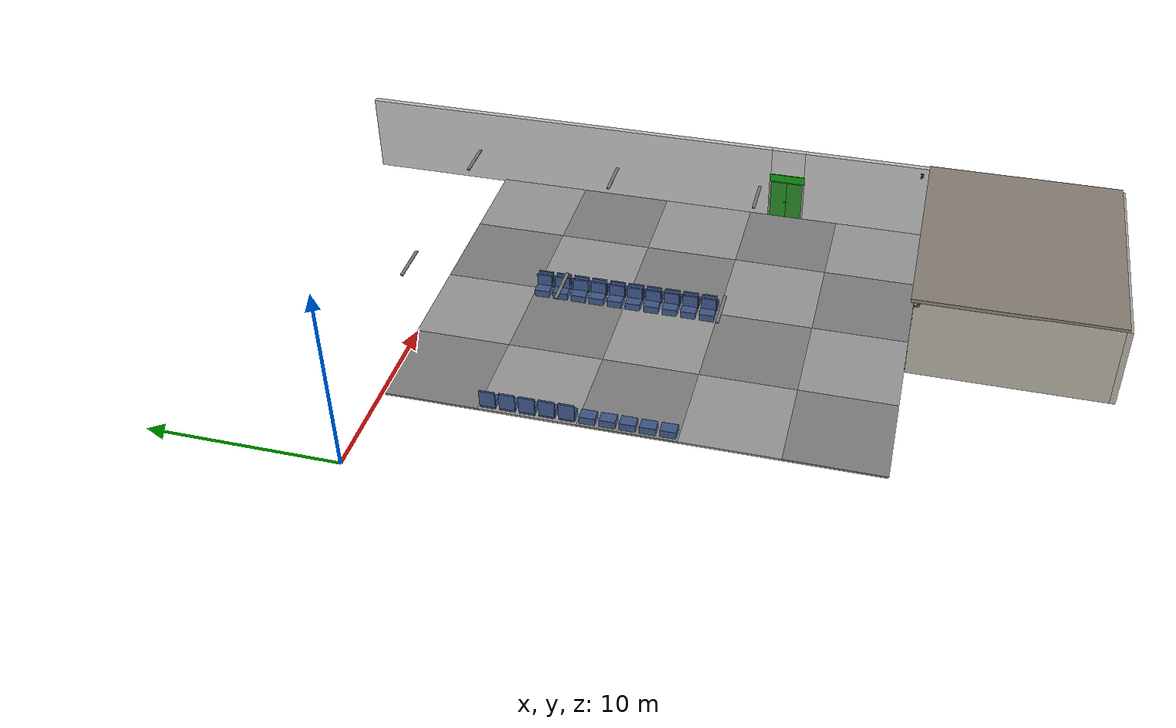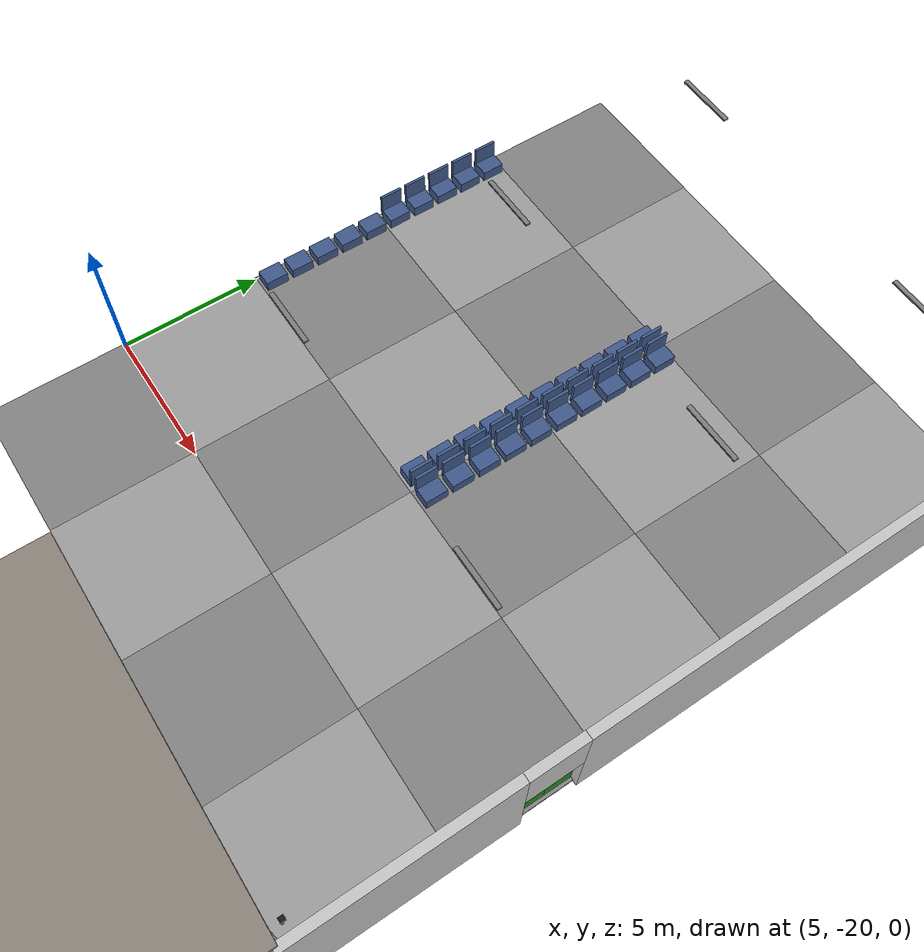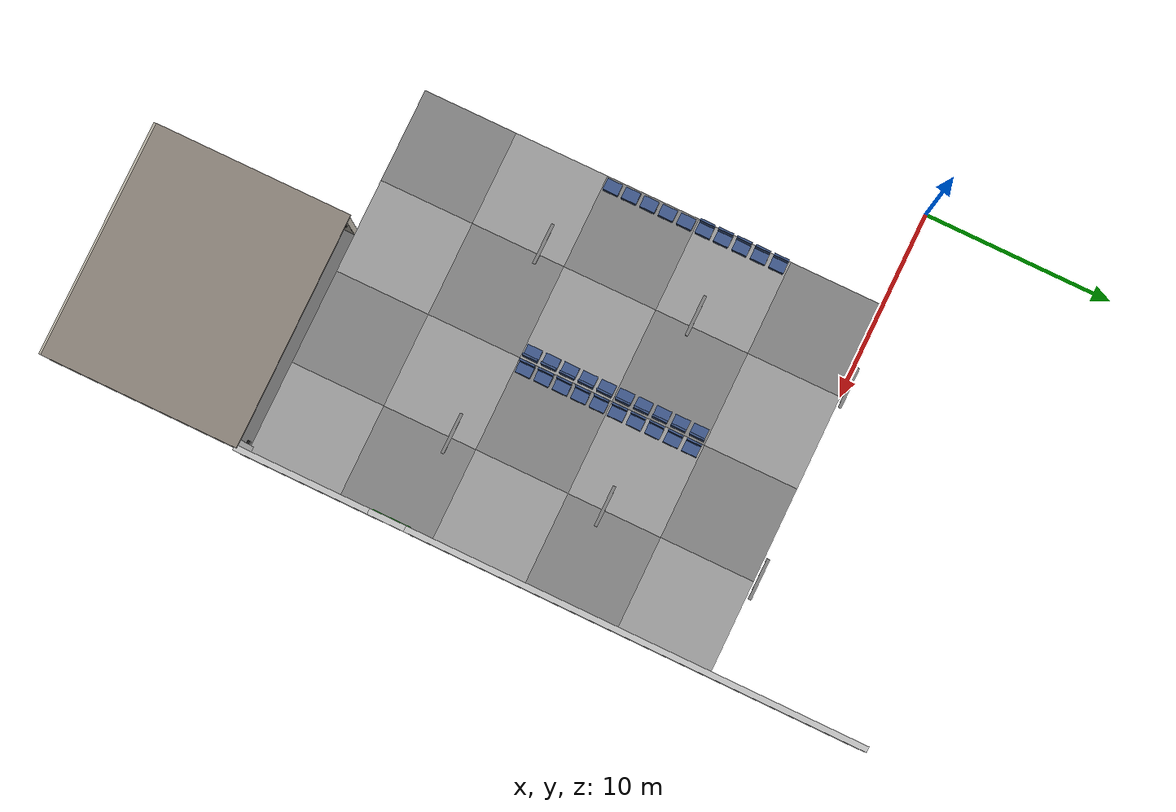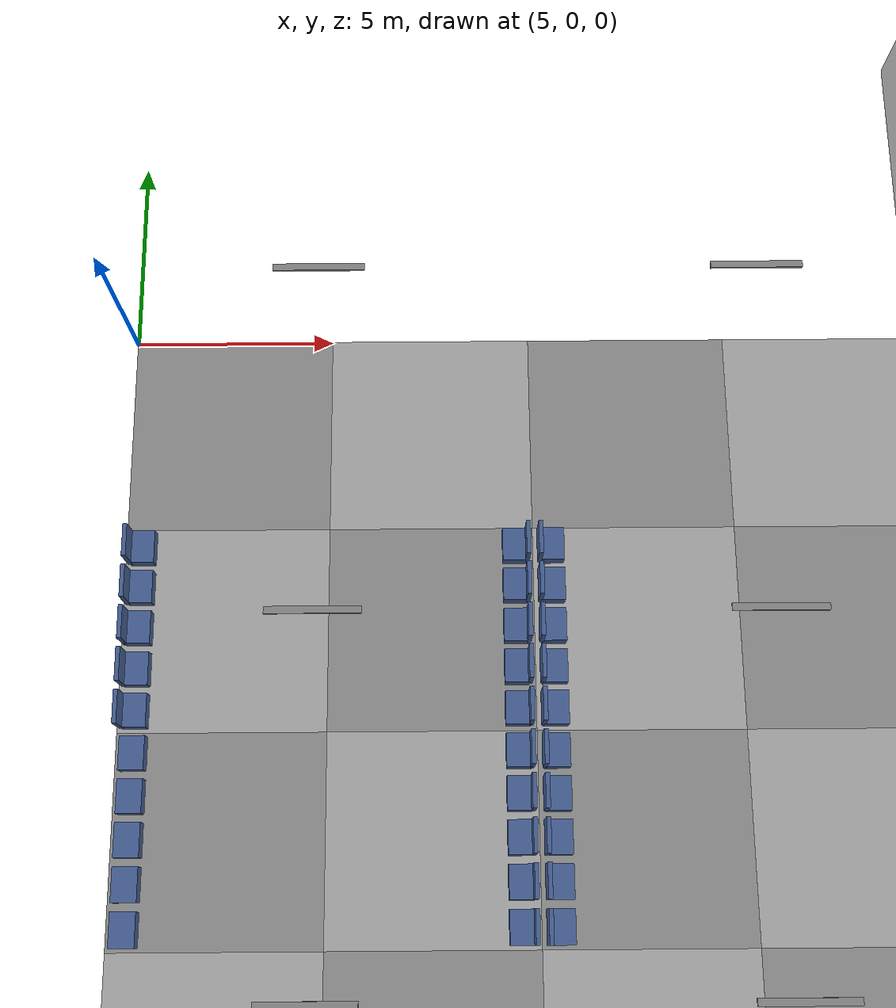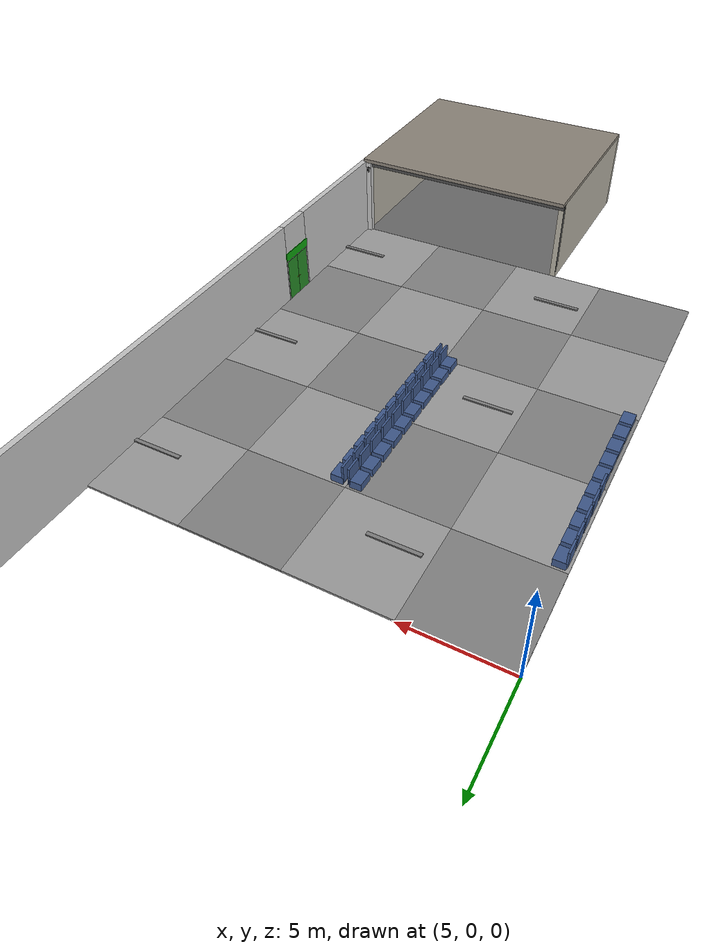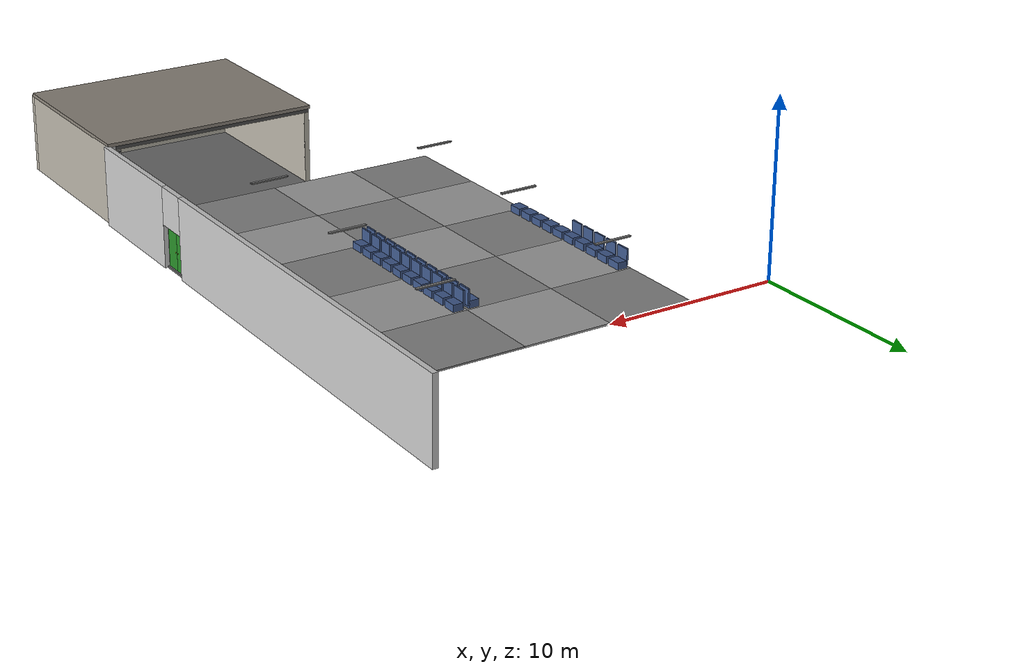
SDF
<sdf version="1.10">
 <world name="my_world">
  <model name="vtile_6_0">
   <static>true</static>
   <pose>7.5 -22.5 0.05 0 0 0</pose>
   <link name="link">
    <visual name="vis">
     <geometry><box><size>5 5 0.1</size></box></geometry>
     <material><ambient>0.52 0.52 0.52 1</ambient><diffuse>0.52 0.52 0.52 1</diffuse></material>
    </visual>
   </link>
  </model>
  <model name="vtile_6_1">
   <static>true</static>
   <pose>7.5 -17.5 0.05 0 0 0</pose>
   <link name="link">
    <visual name="vis">
     <geometry><box><size>5 5 0.1</size></box></geometry>
     <material><ambient>0.62 0.62 0.62 1</ambient><diffuse>0.62 0.62 0.62 1</diffuse></material>
    </visual>
   </link>
  </model>
  <model name="vtile_6_2">
   <static>true</static>
   <pose>7.5 -12.5 0.05 0 0 0</pose>
   <link name="link">
    <visual name="vis">
     <geometry><box><size>5 5 0.1</size></box></geometry>
     <material><ambient>0.52 0.52 0.52 1</ambient><diffuse>0.52 0.52 0.52 1</diffuse></material>
    </visual>
   </link>
  </model>
  <model name="vtile_6_3">
   <static>true</static>
   <pose>7.5 -7.5 0.05 0 0 0</pose>
   <link name="link">
    <visual name="vis">
     <geometry><box><size>5 5 0.1</size></box></geometry>
     <material><ambient>0.62 0.62 0.62 1</ambient><diffuse>0.62 0.62 0.62 1</diffuse></material>
    </visual>
   </link>
  </model>
  <model name="vtile_6_4">
   <static>true</static>
   <pose>7.5 -2.5 0.05 0 0 0</pose>
   <link name="link">
    <visual name="vis">
     <geometry><box><size>5 5 0.1</size></box></geometry>
     <material><ambient>0.52 0.52 0.52 1</ambient><diffuse>0.52 0.52 0.52 1</diffuse></material>
    </visual>
   </link>
  </model>
  <model name="vtile_7_0">
   <static>true</static>
   <pose>12.5 -22.5 0.05 0 0 0</pose>
   <link name="link">
    <visual name="vis">
     <geometry><box><size>5 5 0.1</size></box></geometry>
     <material><ambient>0.62 0.62 0.62 1</ambient><diffuse>0.62 0.62 0.62 1</diffuse></material>
    </visual>
   </link>
  </model>
  <model name="vtile_7_1">
   <static>true</static>
   <pose>12.5 -17.5 0.05 0 0 0</pose>
   <link name="link">
    <visual name="vis">
     <geometry><box><size>5 5 0.1</size></box></geometry>
     <material><ambient>0.52 0.52 0.52 1</ambient><diffuse>0.52 0.52 0.52 1</diffuse></material>
    </visual>
   </link>
  </model>
  <model name="vtile_7_2">
   <static>true</static>
   <pose>12.5 -12.5 0.05 0 0 0</pose>
   <link name="link">
    <visual name="vis">
     <geometry><box><size>5 5 0.1</size></box></geometry>
     <material><ambient>0.62 0.62 0.62 1</ambient><diffuse>0.62 0.62 0.62 1</diffuse></material>
    </visual>
   </link>
  </model>
  <model name="vtile_7_3">
   <static>true</static>
   <pose>12.5 -7.5 0.05 0 0 0</pose>
   <link name="link">
    <visual name="vis">
     <geometry><box><size>5 5 0.1</size></box></geometry>
     <material><ambient>0.52 0.52 0.52 1</ambient><diffuse>0.52 0.52 0.52 1</diffuse></material>
    </visual>
   </link>
  </model>
  <model name="vtile_7_4">
   <static>true</static>
   <pose>12.5 -2.5 0.05 0 0 0</pose>
   <link name="link">
    <visual name="vis">
     <geometry><box><size>5 5 0.1</size></box></geometry>
     <material><ambient>0.62 0.62 0.62 1</ambient><diffuse>0.62 0.62 0.62 1</diffuse></material>
    </visual>
   </link>
  </model>
  <model name="vtile_8_0">
   <static>true</static>
   <pose>17.5 -22.5 0.05 0 0 0</pose>
   <link name="link">
    <visual name="vis">
     <geometry><box><size>5 5 0.1</size></box></geometry>
     <material><ambient>0.52 0.52 0.52 1</ambient><diffuse>0.52 0.52 0.52 1</diffuse></material>
    </visual>
   </link>
  </model>
  <model name="vtile_8_1">
   <static>true</static>
   <pose>17.5 -17.5 0.05 0 0 0</pose>
   <link name="link">
    <visual name="vis">
     <geometry><box><size>5 5 0.1</size></box></geometry>
     <material><ambient>0.62 0.62 0.62 1</ambient><diffuse>0.62 0.62 0.62 1</diffuse></material>
    </visual>
   </link>
  </model>
  <model name="vtile_8_2">
   <static>true</static>
   <pose>17.5 -12.5 0.05 0 0 0</pose>
   <link name="link">
    <visual name="vis">
     <geometry><box><size>5 5 0.1</size></box></geometry>
     <material><ambient>0.52 0.52 0.52 1</ambient><diffuse>0.52 0.52 0.52 1</diffuse></material>
    </visual>
   </link>
  </model>
  <model name="vtile_8_3">
   <static>true</static>
   <pose>17.5 -7.5 0.05 0 0 0</pose>
   <link name="link">
    <visual name="vis">
     <geometry><box><size>5 5 0.1</size></box></geometry>
     <material><ambient>0.62 0.62 0.62 1</ambient><diffuse>0.62 0.62 0.62 1</diffuse></material>
    </visual>
   </link>
  </model>
  <model name="vtile_8_4">
   <static>true</static>
   <pose>17.5 -2.5 0.05 0 0 0</pose>
   <link name="link">
    <visual name="vis">
     <geometry><box><size>5 5 0.1</size></box></geometry>
     <material><ambient>0.52 0.52 0.52 1</ambient><diffuse>0.52 0.52 0.52 1</diffuse></material>
    </visual>
   </link>
  </model>
  <model name="vtile_9_0">
   <static>true</static>
   <pose>22.5 -22.5 0.05 0 0 0</pose>
   <link name="link">
    <visual name="vis">
     <geometry><box><size>5 5 0.1</size></box></geometry>
     <material><ambient>0.62 0.62 0.62 1</ambient><diffuse>0.62 0.62 0.62 1</diffuse></material>
    </visual>
   </link>
  </model>
  <model name="vtile_9_1">
   <static>true</static>
   <pose>22.5 -17.5 0.05 0 0 0</pose>
   <link name="link">
    <visual name="vis">
     <geometry><box><size>5 5 0.1</size></box></geometry>
     <material><ambient>0.52 0.52 0.52 1</ambient><diffuse>0.52 0.52 0.52 1</diffuse></material>
    </visual>
   </link>
  </model>
  <model name="vtile_9_2">
   <static>true</static>
   <pose>22.5 -12.5 0.05 0 0 0</pose>
   <link name="link">
    <visual name="vis">
     <geometry><box><size>5 5 0.1</size></box></geometry>
     <material><ambient>0.62 0.62 0.62 1</ambient><diffuse>0.62 0.62 0.62 1</diffuse></material>
    </visual>
   </link>
  </model>
  <model name="vtile_9_3">
   <static>true</static>
   <pose>22.5 -7.5 0.05 0 0 0</pose>
   <link name="link">
    <visual name="vis">
     <geometry><box><size>5 5 0.1</size></box></geometry>
     <material><ambient>0.52 0.52 0.52 1</ambient><diffuse>0.52 0.52 0.52 1</diffuse></material>
    </visual>
   </link>
  </model>
  <model name="vtile_9_4">
   <static>true</static>
   <pose>22.5 -2.5 0.05 0 0 0</pose>
   <link name="link">
    <visual name="vis">
     <geometry><box><size>5 5 0.1</size></box></geometry>
     <material><ambient>0.62 0.62 0.62 1</ambient><diffuse>0.62 0.62 0.62 1</diffuse></material>
    </visual>
   </link>
  </model>
  <model name="wall_south_e">
   <static>true</static>
   <pose>24.775 -25 2.25 0 0 0</pose>
   <link name="link">
    <collision name="col"><geometry><box><size>0.45 0.3 4.5</size></box></geometry></collision>
    <visual name="vis">
     <geometry><box><size>0.45 0.3 4.5</size></box></geometry>
     <material><ambient>0.78 0.78 0.78 1</ambient><diffuse>0.78 0.78 0.78 1</diffuse></material>
    </visual>
   </link>
  </model>
  <model name="wall_east_s">
   <static>true</static>
   <pose>25 -21.475 2.25 0 0 0</pose>
   <link name="link">
    <collision name="col"><geometry><box><size>0.3 7.05 4.5</size></box></geometry></collision>
    <visual name="vis">
     <geometry><box><size>0.3 7.05 4.5</size></box></geometry>
     <material><ambient>0.78 0.78 0.78 1</ambient><diffuse>0.78 0.78 0.78 1</diffuse></material>
    </visual>
   </link>
  </model>
  <model name="wall_east_s2">
   <static>true</static>
   <pose>25 -4.05 2.25 0 0 0</pose>
   <link name="link">
    <collision name="col"><geometry><box><size>0.3 24.0 4.5</size></box></geometry></collision>
    <visual name="vis">
     <geometry><box><size>0.3 24.0 4.5</size></box></geometry>
     <material><ambient>0.78 0.78 0.78 1</ambient><diffuse>0.78 0.78 0.78 1</diffuse></material>
    </visual>
   </link>
  </model>
  <model name="wall_east_exit_top">
   <static>true</static>
   <pose>25 -17 3.45 0 0 0</pose>
   <link name="link">
    <collision name="col"><geometry><box><size>0.3 1.9 2.1</size></box></geometry></collision>
    <visual name="vis">
     <geometry><box><size>0.3 1.9 2.1</size></box></geometry>
     <material><ambient>0.78 0.78 0.78 1</ambient><diffuse>0.78 0.78 0.78 1</diffuse></material>
    </visual>
   </link>
  </model>
  <model name="exit_east_door_l">
   <static>true</static>
   <pose>24.87 -17.45 1.2 0 0 0</pose>
   <link name="link">
    <collision name="col"><geometry><box><size>0.06 0.9 2.4</size></box></geometry></collision>
    <visual name="vis">
     <geometry><box><size>0.06 0.9 2.4</size></box></geometry>
     <material><ambient>0.15 0.55 0.15 1</ambient><diffuse>0.15 0.55 0.15 1</diffuse></material>
    </visual>
   </link>
  </model>
  <model name="exit_east_door_r">
   <static>true</static>
   <pose>24.87 -16.55 1.2 0 0 0</pose>
   <link name="link">
    <collision name="col"><geometry><box><size>0.06 0.9 2.4</size></box></geometry></collision>
    <visual name="vis">
     <geometry><box><size>0.06 0.9 2.4</size></box></geometry>
     <material><ambient>0.15 0.55 0.15 1</ambient><diffuse>0.15 0.55 0.15 1</diffuse></material>
    </visual>
   </link>
  </model>
  <model name="exit_east_handle_l">
   <static>true</static>
   <pose>24.87 -17.1 1.1 0 0 0</pose>
   <link name="link">
    <visual name="vis">
     <geometry><box><size>0.08 0.06 0.06</size></box></geometry>
     <material><ambient>0.7 0.6 0.1 1</ambient><diffuse>0.7 0.6 0.1 1</diffuse></material>
    </visual>
   </link>
  </model>
  <model name="exit_east_handle_r">
   <static>true</static>
   <pose>24.87 -16.9 1.1 0 0 0</pose>
   <link name="link">
    <visual name="vis">
     <geometry><box><size>0.08 0.06 0.06</size></box></geometry>
     <material><ambient>0.7 0.6 0.1 1</ambient><diffuse>0.7 0.6 0.1 1</diffuse></material>
    </visual>
   </link>
  </model>
  <model name="exit_east_sign">
   <static>true</static>
   <pose>24.87 -17 2.7 0 0 0</pose>
   <link name="link">
    <visual name="vis">
     <geometry><box><size>0.12 2.0 0.45</size></box></geometry>
     <material><ambient>0.05 0.65 0.05 1</ambient><diffuse>0.05 0.65 0.05 1</diffuse></material>
    </visual>
   </link>
  </model>
  <model name="exit_east_sign_txt">
   <static>true</static>
   <pose>24.87 -17 2.7 0 0 0</pose>
   <link name="link">
    <visual name="vis">
     <geometry><box><size>0.05 1.8 0.28</size></box></geometry>
     <material><ambient>0.92 0.92 0.92 1</ambient><diffuse>0.92 0.92 0.92 1</diffuse></material>
    </visual>
   </link>
  </model>
  <model name="exit_east_frame_l">
   <static>true</static>
   <pose>24.87 -17.95 1.2 0 0 0</pose>
   <link name="link">
    <collision name="col"><geometry><box><size>0.06 0.1 2.4</size></box></geometry></collision>
    <visual name="vis">
     <geometry><box><size>0.06 0.1 2.4</size></box></geometry>
     <material><ambient>0.6 0.6 0.6 1</ambient><diffuse>0.6 0.6 0.6 1</diffuse></material>
    </visual>
   </link>
  </model>
  <model name="exit_east_frame_r">
   <static>true</static>
   <pose>24.87 -16.05 1.2 0 0 0</pose>
   <link name="link">
    <collision name="col"><geometry><box><size>0.06 0.1 2.4</size></box></geometry></collision>
    <visual name="vis">
     <geometry><box><size>0.06 0.1 2.4</size></box></geometry>
     <material><ambient>0.6 0.6 0.6 1</ambient><diffuse>0.6 0.6 0.6 1</diffuse></material>
    </visual>
   </link>
  </model>
  <model name="exit_east_frame_t">
   <static>true</static>
   <pose>24.87 -17 2.45 0 0 0</pose>
   <link name="link">
    <visual name="vis">
     <geometry><box><size>0.06 2.0 0.1</size></box></geometry>
     <material><ambient>0.6 0.6 0.6 1</ambient><diffuse>0.6 0.6 0.6 1</diffuse></material>
    </visual>
   </link>
  </model>
  <model name="lamp_a_10_strip">
   <static>true</static>
   <pose>10 -8 4.42 0 0 0</pose>
   <link name="link">
    <visual name="strip">
     <geometry><box><size>2.0 0.12 0.04</size></box></geometry>
     <material>
      <ambient>0.95 0.95 0.88 1</ambient>
      <diffuse>0.95 0.95 0.88 1</diffuse>
      <emissive>0.35 0.35 0.30 1</emissive>
     </material>
    </visual>
    <visual name="housing">
     <pose>0 0 0.03 0 0 0</pose>
     <geometry><box><size>2.1 0.16 0.06</size></box></geometry>
     <material><ambient>0.5 0.5 0.5 1</ambient><diffuse>0.5 0.5 0.5 1</diffuse></material>
    </visual>
   </link>
  </model>
  <model name="lamp_a_20_strip">
   <static>true</static>
   <pose>20 -8 4.42 0 0 0</pose>
   <link name="link">
    <visual name="strip">
     <geometry><box><size>2.0 0.12 0.04</size></box></geometry>
     <material>
      <ambient>0.95 0.95 0.88 1</ambient>
      <diffuse>0.95 0.95 0.88 1</diffuse>
      <emissive>0.35 0.35 0.30 1</emissive>
     </material>
    </visual>
    <visual name="housing">
     <pose>0 0 0.03 0 0 0</pose>
     <geometry><box><size>2.1 0.16 0.06</size></box></geometry>
     <material><ambient>0.5 0.5 0.5 1</ambient><diffuse>0.5 0.5 0.5 1</diffuse></material>
    </visual>
   </link>
  </model>
  <model name="lamp_b_10_strip">
   <static>true</static>
   <pose>10 0 4.42 0 0 0</pose>
   <link name="link">
    <visual name="strip">
     <geometry><box><size>2.0 0.12 0.04</size></box></geometry>
     <material>
      <ambient>0.95 0.95 0.88 1</ambient>
      <diffuse>0.95 0.95 0.88 1</diffuse>
      <emissive>0.35 0.35 0.30 1</emissive>
     </material>
    </visual>
    <visual name="housing">
     <pose>0 0 0.03 0 0 0</pose>
     <geometry><box><size>2.1 0.16 0.06</size></box></geometry>
     <material><ambient>0.5 0.5 0.5 1</ambient><diffuse>0.5 0.5 0.5 1</diffuse></material>
    </visual>
   </link>
  </model>
  <model name="lamp_b_20_strip">
   <static>true</static>
   <pose>20 0 4.42 0 0 0</pose>
   <link name="link">
    <visual name="strip">
     <geometry><box><size>2.0 0.12 0.04</size></box></geometry>
     <material>
      <ambient>0.95 0.95 0.88 1</ambient>
      <diffuse>0.95 0.95 0.88 1</diffuse>
      <emissive>0.35 0.35 0.30 1</emissive>
     </material>
    </visual>
    <visual name="housing">
     <pose>0 0 0.03 0 0 0</pose>
     <geometry><box><size>2.1 0.16 0.06</size></box></geometry>
     <material><ambient>0.5 0.5 0.5 1</ambient><diffuse>0.5 0.5 0.5 1</diffuse></material>
    </visual>
   </link>
  </model>
  <model name="lamp_d_10_strip">
   <static>true</static>
   <pose>10 -16 4.42 0 0 0</pose>
   <link name="link">
    <visual name="strip">
     <geometry><box><size>2.0 0.12 0.04</size></box></geometry>
     <material>
      <ambient>0.95 0.95 0.88 1</ambient>
      <diffuse>0.95 0.95 0.88 1</diffuse>
      <emissive>0.35 0.35 0.30 1</emissive>
     </material>
    </visual>
    <visual name="housing">
     <pose>0 0 0.03 0 0 0</pose>
     <geometry><box><size>2.1 0.16 0.06</size></box></geometry>
     <material><ambient>0.5 0.5 0.5 1</ambient><diffuse>0.5 0.5 0.5 1</diffuse></material>
    </visual>
   </link>
  </model>
  <model name="lamp_d_20_strip">
   <static>true</static>
   <pose>20 -16 4.42 0 0 0</pose>
   <link name="link">
    <visual name="strip">
     <geometry><box><size>2.0 0.12 0.04</size></box></geometry>
     <material>
      <ambient>0.95 0.95 0.88 1</ambient>
      <diffuse>0.95 0.95 0.88 1</diffuse>
      <emissive>0.35 0.35 0.30 1</emissive>
     </material>
    </visual>
    <visual name="housing">
     <pose>0 0 0.03 0 0 0</pose>
     <geometry><box><size>2.1 0.16 0.06</size></box></geometry>
     <material><ambient>0.5 0.5 0.5 1</ambient><diffuse>0.5 0.5 0.5 1</diffuse></material>
    </visual>
   </link>
  </model>
  <model name="garage_wall_east">
   <static>true</static>
   <pose>24.85 -30.0 2.25 0 0 0</pose>
   <link name="link">
    <collision name="col"><geometry><box><size>0.3 10 4.5</size></box></geometry></collision>
    <visual name="vis">
     <geometry><box><size>0.3 10 4.5</size></box></geometry>
     <material><ambient>0.72 0.70 0.65 1</ambient><diffuse>0.72 0.70 0.65 1</diffuse></material>
    </visual>
   </link>
  </model>
  <model name="garage_wall_west">
   <static>true</static>
   <pose>12.85 -30.0 2.25 0 0 0</pose>
   <link name="link">
    <collision name="col"><geometry><box><size>0.3 10 4.5</size></box></geometry></collision>
    <visual name="vis">
     <geometry><box><size>0.3 10 4.5</size></box></geometry>
     <material><ambient>0.72 0.70 0.65 1</ambient><diffuse>0.72 0.70 0.65 1</diffuse></material>
    </visual>
   </link>
  </model>
  <model name="garage_wall_south">
   <static>true</static>
   <pose>18.85 -35.15 2.25 0 0 0</pose>
   <link name="link">
    <collision name="col"><geometry><box><size>12.3 0.3 4.5</size></box></geometry></collision>
    <visual name="vis">
     <geometry><box><size>12.3 0.3 4.5</size></box></geometry>
     <material><ambient>0.72 0.70 0.65 1</ambient><diffuse>0.72 0.70 0.65 1</diffuse></material>
    </visual>
   </link>
  </model>
  <model name="garage_roof">
   <static>true</static>
   <pose>18.85 -30.0 4.55 0 0 0</pose>
   <link name="link">
    <collision name="col"><geometry><box><size>12.3 10.3 0.2</size></box></geometry></collision>
    <visual name="vis">
     <geometry><box><size>12.3 10.3 0.2</size></box></geometry>
     <material><ambient>0.55 0.52 0.48 1</ambient><diffuse>0.55 0.52 0.48 1</diffuse></material>
    </visual>
   </link>
  </model>
  <model name="garage_floor">
   <static>true</static>
   <pose>18.85 -30.0 0.05 0 0 0</pose>
   <link name="link">
    <collision name="col"><geometry><box><size>11.8 10 0.1</size></box></geometry></collision>
    <visual name="vis">
     <geometry><box><size>11.8 10 0.1</size></box></geometry>
     <material><ambient>0.42 0.42 0.42 1</ambient><diffuse>0.42 0.42 0.42 1</diffuse></material>
    </visual>
   </link>
  </model>
  <model name="garage_door_frame_l">
   <static>true</static>
   <pose>12.85 -25.15 2.25 0 0 0</pose>
   <link name="link">
    <collision name="col"><geometry><box><size>0.3 0.3 4.5</size></box></geometry></collision>
    <visual name="vis">
     <geometry><box><size>0.3 0.3 4.5</size></box></geometry>
     <material><ambient>0.3 0.3 0.3 1</ambient><diffuse>0.3 0.3 0.3 1</diffuse></material>
    </visual>
   </link>
  </model>
  <model name="garage_door_frame_r">
   <static>true</static>
   <pose>24.8 -25.15 2.25 0 0 0</pose>
   <link name="link">
    <collision name="col"><geometry><box><size>0.3 0.3 4.5</size></box></geometry></collision>
    <visual name="vis">
     <geometry><box><size>0.3 0.3 4.5</size></box></geometry>
     <material><ambient>0.3 0.3 0.3 1</ambient><diffuse>0.3 0.3 0.3 1</diffuse></material>
    </visual>
   </link>
  </model>
  <model name="garage_door_frame_t">
   <static>true</static>
   <pose>18.85 -25.15 4.35 0 0 0</pose>
   <link name="link">
    <collision name="col"><geometry><box><size>12.3 0.3 0.3</size></box></geometry></collision>
    <visual name="vis">
     <geometry><box><size>12.3 0.3 0.3</size></box></geometry>
     <material><ambient>0.3 0.3 0.3 1</ambient><diffuse>0.3 0.3 0.3 1</diffuse></material>
    </visual>
   </link>
  </model>
  <model name="garage_lamp_strip">
   <static>true</static>
   <pose>18.85 -28 4.42 0 0 0</pose>
   <link name="link">
    <visual name="strip">
     <geometry><box><size>8.0 0.12 0.04</size></box></geometry>
     <material>
      <ambient>0.95 0.95 0.88 1</ambient>
      <diffuse>0.95 0.95 0.88 1</diffuse>
      <emissive>0.35 0.35 0.30 1</emissive>
     </material>
    </visual>
    <visual name="housing">
     <pose>0 0 0.03 0 0 0</pose>
     <geometry><box><size>8.1 0.16 0.06</size></box></geometry>
     <material><ambient>0.5 0.5 0.5 1</ambient><diffuse>0.5 0.5 0.5 1</diffuse></material>
    </visual>
   </link>
  </model>
  <model name="camera_garage_mount">
   <static>true</static>
   <pose>18.85 -34.5 4.3 0 0 0</pose>
   <link name="link">
    <visual name="vis">
     <geometry><box><size>0.15 0.15 0.08</size></box></geometry>
     <material><ambient>0.1 0.1 0.1 1</ambient><diffuse>0.1 0.1 0.1 1</diffuse></material>
    </visual>
   </link>
  </model>
  <model name="camera_garage_body">
   <static>true</static>
   <pose>18.85 -34.5 4.15 0 0.9 -1.5708</pose>
   <link name="link">
    <visual name="vis">
     <geometry><cylinder><radius>0.05</radius><length>0.16</length></cylinder></geometry>
     <material><ambient>0.12 0.12 0.12 1</ambient><diffuse>0.12 0.12 0.12 1</diffuse></material>
    </visual>
    <sensor name="camera_garage" type="camera">
     <topic>/surveillance/garage</topic>
     <update_rate>10</update_rate>
     <camera>
      <horizontal_fov>1.3</horizontal_fov>
      <image><width>640</width><height>480</height></image>
      <clip><near>0.1</near><far>20.0</far></clip>
     </camera>
     <always_on>true</always_on>
     <visualize>false</visualize>
    </sensor>
   </link>
  </model>
  <model name="camera_se_mount">
   <static>true</static>
   <pose>24.5 -24.5 4.3 0 0 0</pose>
   <link name="link">
    <visual name="vis">
     <geometry><box><size>0.15 0.15 0.08</size></box></geometry>
     <material><ambient>0.1 0.1 0.1 1</ambient><diffuse>0.1 0.1 0.1 1</diffuse></material>
    </visual>
   </link>
  </model>
  <model name="camera_se_body">
   <static>true</static>
   <pose>24.5 -24.5 4.15 0 1.9199 2.3562</pose>
   <link name="link">
    <visual name="vis">
     <geometry><cylinder><radius>0.05</radius><length>0.16</length></cylinder></geometry>
     <material><ambient>0.12 0.12 0.12 1</ambient><diffuse>0.12 0.12 0.12 1</diffuse></material>
    </visual>
    <sensor name="camera_se" type="camera">
     <pose>0 0 0 0 -1.5708 0</pose>
     <topic>/surveillance/se</topic>
     <update_rate>10</update_rate>
     <camera>
      <horizontal_fov>1.9199</horizontal_fov>
      <image><width>1280</width><height>720</height></image>
      <clip><near>0.1</near><far>70.0</far></clip>
     </camera>
     <always_on>true</always_on>
     <visualize>false</visualize>
    </sensor>
   </link>
  </model>
  <model name="cluster_2_b_0">
   <static>true</static>
   <pose>5.45 -14.50 0.25 0 0 0</pose>
   <link name="link">
    <collision name="col"><geometry><box><size>0.6 0.8 0.5</size></box></geometry></collision>
    <visual name="vis">
     <geometry><box><size>0.6 0.8 0.5</size></box></geometry>
     <material><ambient>0.25 0.35 0.55 1</ambient><diffuse>0.25 0.35 0.55 1</diffuse></material>
    </visual>
   </link>
  </model>
  <model name="cluster_2_b_1">
   <static>true</static>
   <pose>5.45 -13.50 0.25 0 0 0</pose>
   <link name="link">
    <collision name="col"><geometry><box><size>0.6 0.8 0.5</size></box></geometry></collision>
    <visual name="vis">
     <geometry><box><size>0.6 0.8 0.5</size></box></geometry>
     <material><ambient>0.25 0.35 0.55 1</ambient><diffuse>0.25 0.35 0.55 1</diffuse></material>
    </visual>
   </link>
  </model>
  <model name="cluster_2_b_2">
   <static>true</static>
   <pose>5.45 -12.50 0.25 0 0 0</pose>
   <link name="link">
    <collision name="col"><geometry><box><size>0.6 0.8 0.5</size></box></geometry></collision>
    <visual name="vis">
     <geometry><box><size>0.6 0.8 0.5</size></box></geometry>
     <material><ambient>0.25 0.35 0.55 1</ambient><diffuse>0.25 0.35 0.55 1</diffuse></material>
    </visual>
   </link>
  </model>
  <model name="cluster_2_b_3">
   <static>true</static>
   <pose>5.45 -11.50 0.25 0 0 0</pose>
   <link name="link">
    <collision name="col"><geometry><box><size>0.6 0.8 0.5</size></box></geometry></collision>
    <visual name="vis">
     <geometry><box><size>0.6 0.8 0.5</size></box></geometry>
     <material><ambient>0.25 0.35 0.55 1</ambient><diffuse>0.25 0.35 0.55 1</diffuse></material>
    </visual>
   </link>
  </model>
  <model name="cluster_2_b_4">
   <static>true</static>
   <pose>5.45 -10.50 0.25 0 0 0</pose>
   <link name="link">
    <collision name="col"><geometry><box><size>0.6 0.8 0.5</size></box></geometry></collision>
    <visual name="vis">
     <geometry><box><size>0.6 0.8 0.5</size></box></geometry>
     <material><ambient>0.25 0.35 0.55 1</ambient><diffuse>0.25 0.35 0.55 1</diffuse></material>
    </visual>
   </link>
  </model>
  <model name="cluster_2_b_5">
   <static>true</static>
   <pose>5.45 -9.50 0.25 0 0 0</pose>
   <link name="link">
    <collision name="col"><geometry><box><size>0.6 0.8 0.5</size></box></geometry></collision>
    <visual name="vis">
     <geometry><box><size>0.6 0.8 0.5</size></box></geometry>
     <material><ambient>0.25 0.35 0.55 1</ambient><diffuse>0.25 0.35 0.55 1</diffuse></material>
    </visual>
   </link>
  </model>
  <model name="cluster_2_b_5_back">
   <static>true</static>
   <pose>5.15 -9.50 0.7 0 0 0</pose>
   <link name="link">
    <collision name="col"><geometry><box><size>0.1 0.8 0.9</size></box></geometry></collision>
    <visual name="vis">
     <geometry><box><size>0.1 0.8 0.9</size></box></geometry>
     <material><ambient>0.25 0.35 0.55 1</ambient><diffuse>0.25 0.35 0.55 1</diffuse></material>
    </visual>
   </link>
  </model>
  <model name="cluster_2_b_6">
   <static>true</static>
   <pose>5.45 -8.50 0.25 0 0 0</pose>
   <link name="link">
    <collision name="col"><geometry><box><size>0.6 0.8 0.5</size></box></geometry></collision>
    <visual name="vis">
     <geometry><box><size>0.6 0.8 0.5</size></box></geometry>
     <material><ambient>0.25 0.35 0.55 1</ambient><diffuse>0.25 0.35 0.55 1</diffuse></material>
    </visual>
   </link>
  </model>
  <model name="cluster_2_b_6_back">
   <static>true</static>
   <pose>5.15 -8.50 0.7 0 0 0</pose>
   <link name="link">
    <collision name="col"><geometry><box><size>0.1 0.8 0.9</size></box></geometry></collision>
    <visual name="vis">
     <geometry><box><size>0.1 0.8 0.9</size></box></geometry>
     <material><ambient>0.25 0.35 0.55 1</ambient><diffuse>0.25 0.35 0.55 1</diffuse></material>
    </visual>
   </link>
  </model>
  <model name="cluster_2_b_7">
   <static>true</static>
   <pose>5.45 -7.50 0.25 0 0 0</pose>
   <link name="link">
    <collision name="col"><geometry><box><size>0.6 0.8 0.5</size></box></geometry></collision>
    <visual name="vis">
     <geometry><box><size>0.6 0.8 0.5</size></box></geometry>
     <material><ambient>0.25 0.35 0.55 1</ambient><diffuse>0.25 0.35 0.55 1</diffuse></material>
    </visual>
   </link>
  </model>
  <model name="cluster_2_b_7_back">
   <static>true</static>
   <pose>5.15 -7.50 0.7 0 0 0</pose>
   <link name="link">
    <collision name="col"><geometry><box><size>0.1 0.8 0.9</size></box></geometry></collision>
    <visual name="vis">
     <geometry><box><size>0.1 0.8 0.9</size></box></geometry>
     <material><ambient>0.25 0.35 0.55 1</ambient><diffuse>0.25 0.35 0.55 1</diffuse></material>
    </visual>
   </link>
  </model>
  <model name="cluster_2_b_8">
   <static>true</static>
   <pose>5.45 -6.50 0.25 0 0 0</pose>
   <link name="link">
    <collision name="col"><geometry><box><size>0.6 0.8 0.5</size></box></geometry></collision>
    <visual name="vis">
     <geometry><box><size>0.6 0.8 0.5</size></box></geometry>
     <material><ambient>0.25 0.35 0.55 1</ambient><diffuse>0.25 0.35 0.55 1</diffuse></material>
    </visual>
   </link>
  </model>
  <model name="cluster_2_b_8_back">
   <static>true</static>
   <pose>5.15 -6.50 0.7 0 0 0</pose>
   <link name="link">
    <collision name="col"><geometry><box><size>0.1 0.8 0.9</size></box></geometry></collision>
    <visual name="vis">
     <geometry><box><size>0.1 0.8 0.9</size></box></geometry>
     <material><ambient>0.25 0.35 0.55 1</ambient><diffuse>0.25 0.35 0.55 1</diffuse></material>
    </visual>
   </link>
  </model>
  <model name="cluster_2_b_9">
   <static>true</static>
   <pose>5.45 -5.50 0.25 0 0 0</pose>
   <link name="link">
    <collision name="col"><geometry><box><size>0.6 0.8 0.5</size></box></geometry></collision>
    <visual name="vis">
     <geometry><box><size>0.6 0.8 0.5</size></box></geometry>
     <material><ambient>0.25 0.35 0.55 1</ambient><diffuse>0.25 0.35 0.55 1</diffuse></material>
    </visual>
   </link>
  </model>
  <model name="cluster_2_b_9_back">
   <static>true</static>
   <pose>5.15 -5.50 0.7 0 0 0</pose>
   <link name="link">
    <collision name="col"><geometry><box><size>0.1 0.8 0.9</size></box></geometry></collision>
    <visual name="vis">
     <geometry><box><size>0.1 0.8 0.9</size></box></geometry>
     <material><ambient>0.25 0.35 0.55 1</ambient><diffuse>0.25 0.35 0.55 1</diffuse></material>
    </visual>
   </link>
  </model>
  <model name="cluster_3_a_0">
   <static>true</static>
   <pose>14.55 -14.50 0.25 0 0 0</pose>
   <link name="link">
    <collision name="col"><geometry><box><size>0.6 0.8 0.5</size></box></geometry></collision>
    <visual name="vis">
     <geometry><box><size>0.6 0.8 0.5</size></box></geometry>
     <material><ambient>0.25 0.35 0.55 1</ambient><diffuse>0.25 0.35 0.55 1</diffuse></material>
    </visual>
   </link>
  </model>
  <model name="cluster_3_a_0_back">
   <static>true</static>
   <pose>14.85 -14.50 0.7 0 0 0</pose>
   <link name="link">
    <collision name="col"><geometry><box><size>0.1 0.8 0.9</size></box></geometry></collision>
    <visual name="vis">
     <geometry><box><size>0.1 0.8 0.9</size></box></geometry>
     <material><ambient>0.25 0.35 0.55 1</ambient><diffuse>0.25 0.35 0.55 1</diffuse></material>
    </visual>
   </link>
  </model>
  <model name="cluster_3_b_0">
   <static>true</static>
   <pose>15.45 -14.50 0.25 0 0 0</pose>
   <link name="link">
    <collision name="col"><geometry><box><size>0.6 0.8 0.5</size></box></geometry></collision>
    <visual name="vis">
     <geometry><box><size>0.6 0.8 0.5</size></box></geometry>
     <material><ambient>0.25 0.35 0.55 1</ambient><diffuse>0.25 0.35 0.55 1</diffuse></material>
    </visual>
   </link>
  </model>
  <model name="cluster_3_b_0_back">
   <static>true</static>
   <pose>15.15 -14.50 0.7 0 0 0</pose>
   <link name="link">
    <collision name="col"><geometry><box><size>0.1 0.8 0.9</size></box></geometry></collision>
    <visual name="vis">
     <geometry><box><size>0.1 0.8 0.9</size></box></geometry>
     <material><ambient>0.25 0.35 0.55 1</ambient><diffuse>0.25 0.35 0.55 1</diffuse></material>
    </visual>
   </link>
  </model>
  <model name="cluster_3_a_1">
   <static>true</static>
   <pose>14.55 -13.50 0.25 0 0 0</pose>
   <link name="link">
    <collision name="col"><geometry><box><size>0.6 0.8 0.5</size></box></geometry></collision>
    <visual name="vis">
     <geometry><box><size>0.6 0.8 0.5</size></box></geometry>
     <material><ambient>0.25 0.35 0.55 1</ambient><diffuse>0.25 0.35 0.55 1</diffuse></material>
    </visual>
   </link>
  </model>
  <model name="cluster_3_a_1_back">
   <static>true</static>
   <pose>14.85 -13.50 0.7 0 0 0</pose>
   <link name="link">
    <collision name="col"><geometry><box><size>0.1 0.8 0.9</size></box></geometry></collision>
    <visual name="vis">
     <geometry><box><size>0.1 0.8 0.9</size></box></geometry>
     <material><ambient>0.25 0.35 0.55 1</ambient><diffuse>0.25 0.35 0.55 1</diffuse></material>
    </visual>
   </link>
  </model>
  <model name="cluster_3_b_1">
   <static>true</static>
   <pose>15.45 -13.50 0.25 0 0 0</pose>
   <link name="link">
    <collision name="col"><geometry><box><size>0.6 0.8 0.5</size></box></geometry></collision>
    <visual name="vis">
     <geometry><box><size>0.6 0.8 0.5</size></box></geometry>
     <material><ambient>0.25 0.35 0.55 1</ambient><diffuse>0.25 0.35 0.55 1</diffuse></material>
    </visual>
   </link>
  </model>
  <model name="cluster_3_b_1_back">
   <static>true</static>
   <pose>15.15 -13.50 0.7 0 0 0</pose>
   <link name="link">
    <collision name="col"><geometry><box><size>0.1 0.8 0.9</size></box></geometry></collision>
    <visual name="vis">
     <geometry><box><size>0.1 0.8 0.9</size></box></geometry>
     <material><ambient>0.25 0.35 0.55 1</ambient><diffuse>0.25 0.35 0.55 1</diffuse></material>
    </visual>
   </link>
  </model>
  <model name="cluster_3_a_2">
   <static>true</static>
   <pose>14.55 -12.50 0.25 0 0 0</pose>
   <link name="link">
    <collision name="col"><geometry><box><size>0.6 0.8 0.5</size></box></geometry></collision>
    <visual name="vis">
     <geometry><box><size>0.6 0.8 0.5</size></box></geometry>
     <material><ambient>0.25 0.35 0.55 1</ambient><diffuse>0.25 0.35 0.55 1</diffuse></material>
    </visual>
   </link>
  </model>
  <model name="cluster_3_a_2_back">
   <static>true</static>
   <pose>14.85 -12.50 0.7 0 0 0</pose>
   <link name="link">
    <collision name="col"><geometry><box><size>0.1 0.8 0.9</size></box></geometry></collision>
    <visual name="vis">
     <geometry><box><size>0.1 0.8 0.9</size></box></geometry>
     <material><ambient>0.25 0.35 0.55 1</ambient><diffuse>0.25 0.35 0.55 1</diffuse></material>
    </visual>
   </link>
  </model>
  <model name="cluster_3_b_2">
   <static>true</static>
   <pose>15.45 -12.50 0.25 0 0 0</pose>
   <link name="link">
    <collision name="col"><geometry><box><size>0.6 0.8 0.5</size></box></geometry></collision>
    <visual name="vis">
     <geometry><box><size>0.6 0.8 0.5</size></box></geometry>
     <material><ambient>0.25 0.35 0.55 1</ambient><diffuse>0.25 0.35 0.55 1</diffuse></material>
    </visual>
   </link>
  </model>
  <model name="cluster_3_b_2_back">
   <static>true</static>
   <pose>15.15 -12.50 0.7 0 0 0</pose>
   <link name="link">
    <collision name="col"><geometry><box><size>0.1 0.8 0.9</size></box></geometry></collision>
    <visual name="vis">
     <geometry><box><size>0.1 0.8 0.9</size></box></geometry>
     <material><ambient>0.25 0.35 0.55 1</ambient><diffuse>0.25 0.35 0.55 1</diffuse></material>
    </visual>
   </link>
  </model>
  <model name="cluster_3_a_3">
   <static>true</static>
   <pose>14.55 -11.50 0.25 0 0 0</pose>
   <link name="link">
    <collision name="col"><geometry><box><size>0.6 0.8 0.5</size></box></geometry></collision>
    <visual name="vis">
     <geometry><box><size>0.6 0.8 0.5</size></box></geometry>
     <material><ambient>0.25 0.35 0.55 1</ambient><diffuse>0.25 0.35 0.55 1</diffuse></material>
    </visual>
   </link>
  </model>
  <model name="cluster_3_a_3_back">
   <static>true</static>
   <pose>14.85 -11.50 0.7 0 0 0</pose>
   <link name="link">
    <collision name="col"><geometry><box><size>0.1 0.8 0.9</size></box></geometry></collision>
    <visual name="vis">
     <geometry><box><size>0.1 0.8 0.9</size></box></geometry>
     <material><ambient>0.25 0.35 0.55 1</ambient><diffuse>0.25 0.35 0.55 1</diffuse></material>
    </visual>
   </link>
  </model>
  <model name="cluster_3_b_3">
   <static>true</static>
   <pose>15.45 -11.50 0.25 0 0 0</pose>
   <link name="link">
    <collision name="col"><geometry><box><size>0.6 0.8 0.5</size></box></geometry></collision>
    <visual name="vis">
     <geometry><box><size>0.6 0.8 0.5</size></box></geometry>
     <material><ambient>0.25 0.35 0.55 1</ambient><diffuse>0.25 0.35 0.55 1</diffuse></material>
    </visual>
   </link>
  </model>
  <model name="cluster_3_b_3_back">
   <static>true</static>
   <pose>15.15 -11.50 0.7 0 0 0</pose>
   <link name="link">
    <collision name="col"><geometry><box><size>0.1 0.8 0.9</size></box></geometry></collision>
    <visual name="vis">
     <geometry><box><size>0.1 0.8 0.9</size></box></geometry>
     <material><ambient>0.25 0.35 0.55 1</ambient><diffuse>0.25 0.35 0.55 1</diffuse></material>
    </visual>
   </link>
  </model>
  <model name="cluster_3_a_4">
   <static>true</static>
   <pose>14.55 -10.50 0.25 0 0 0</pose>
   <link name="link">
    <collision name="col"><geometry><box><size>0.6 0.8 0.5</size></box></geometry></collision>
    <visual name="vis">
     <geometry><box><size>0.6 0.8 0.5</size></box></geometry>
     <material><ambient>0.25 0.35 0.55 1</ambient><diffuse>0.25 0.35 0.55 1</diffuse></material>
    </visual>
   </link>
  </model>
  <model name="cluster_3_a_4_back">
   <static>true</static>
   <pose>14.85 -10.50 0.7 0 0 0</pose>
   <link name="link">
    <collision name="col"><geometry><box><size>0.1 0.8 0.9</size></box></geometry></collision>
    <visual name="vis">
     <geometry><box><size>0.1 0.8 0.9</size></box></geometry>
     <material><ambient>0.25 0.35 0.55 1</ambient><diffuse>0.25 0.35 0.55 1</diffuse></material>
    </visual>
   </link>
  </model>
  <model name="cluster_3_b_4">
   <static>true</static>
   <pose>15.45 -10.50 0.25 0 0 0</pose>
   <link name="link">
    <collision name="col"><geometry><box><size>0.6 0.8 0.5</size></box></geometry></collision>
    <visual name="vis">
     <geometry><box><size>0.6 0.8 0.5</size></box></geometry>
     <material><ambient>0.25 0.35 0.55 1</ambient><diffuse>0.25 0.35 0.55 1</diffuse></material>
    </visual>
   </link>
  </model>
  <model name="cluster_3_b_4_back">
   <static>true</static>
   <pose>15.15 -10.50 0.7 0 0 0</pose>
   <link name="link">
    <collision name="col"><geometry><box><size>0.1 0.8 0.9</size></box></geometry></collision>
    <visual name="vis">
     <geometry><box><size>0.1 0.8 0.9</size></box></geometry>
     <material><ambient>0.25 0.35 0.55 1</ambient><diffuse>0.25 0.35 0.55 1</diffuse></material>
    </visual>
   </link>
  </model>
  <model name="cluster_3_a_5">
   <static>true</static>
   <pose>14.55 -9.50 0.25 0 0 0</pose>
   <link name="link">
    <collision name="col"><geometry><box><size>0.6 0.8 0.5</size></box></geometry></collision>
    <visual name="vis">
     <geometry><box><size>0.6 0.8 0.5</size></box></geometry>
     <material><ambient>0.25 0.35 0.55 1</ambient><diffuse>0.25 0.35 0.55 1</diffuse></material>
    </visual>
   </link>
  </model>
  <model name="cluster_3_a_5_back">
   <static>true</static>
   <pose>14.85 -9.50 0.7 0 0 0</pose>
   <link name="link">
    <collision name="col"><geometry><box><size>0.1 0.8 0.9</size></box></geometry></collision>
    <visual name="vis">
     <geometry><box><size>0.1 0.8 0.9</size></box></geometry>
     <material><ambient>0.25 0.35 0.55 1</ambient><diffuse>0.25 0.35 0.55 1</diffuse></material>
    </visual>
   </link>
  </model>
  <model name="cluster_3_b_5">
   <static>true</static>
   <pose>15.45 -9.50 0.25 0 0 0</pose>
   <link name="link">
    <collision name="col"><geometry><box><size>0.6 0.8 0.5</size></box></geometry></collision>
    <visual name="vis">
     <geometry><box><size>0.6 0.8 0.5</size></box></geometry>
     <material><ambient>0.25 0.35 0.55 1</ambient><diffuse>0.25 0.35 0.55 1</diffuse></material>
    </visual>
   </link>
  </model>
  <model name="cluster_3_b_5_back">
   <static>true</static>
   <pose>15.15 -9.50 0.7 0 0 0</pose>
   <link name="link">
    <collision name="col"><geometry><box><size>0.1 0.8 0.9</size></box></geometry></collision>
    <visual name="vis">
     <geometry><box><size>0.1 0.8 0.9</size></box></geometry>
     <material><ambient>0.25 0.35 0.55 1</ambient><diffuse>0.25 0.35 0.55 1</diffuse></material>
    </visual>
   </link>
  </model>
  <model name="cluster_3_a_6">
   <static>true</static>
   <pose>14.55 -8.50 0.25 0 0 0</pose>
   <link name="link">
    <collision name="col"><geometry><box><size>0.6 0.8 0.5</size></box></geometry></collision>
    <visual name="vis">
     <geometry><box><size>0.6 0.8 0.5</size></box></geometry>
     <material><ambient>0.25 0.35 0.55 1</ambient><diffuse>0.25 0.35 0.55 1</diffuse></material>
    </visual>
   </link>
  </model>
  <model name="cluster_3_a_6_back">
   <static>true</static>
   <pose>14.85 -8.50 0.7 0 0 0</pose>
   <link name="link">
    <collision name="col"><geometry><box><size>0.1 0.8 0.9</size></box></geometry></collision>
    <visual name="vis">
     <geometry><box><size>0.1 0.8 0.9</size></box></geometry>
     <material><ambient>0.25 0.35 0.55 1</ambient><diffuse>0.25 0.35 0.55 1</diffuse></material>
    </visual>
   </link>
  </model>
  <model name="cluster_3_b_6">
   <static>true</static>
   <pose>15.45 -8.50 0.25 0 0 0</pose>
   <link name="link">
    <collision name="col"><geometry><box><size>0.6 0.8 0.5</size></box></geometry></collision>
    <visual name="vis">
     <geometry><box><size>0.6 0.8 0.5</size></box></geometry>
     <material><ambient>0.25 0.35 0.55 1</ambient><diffuse>0.25 0.35 0.55 1</diffuse></material>
    </visual>
   </link>
  </model>
  <model name="cluster_3_b_6_back">
   <static>true</static>
   <pose>15.15 -8.50 0.7 0 0 0</pose>
   <link name="link">
    <collision name="col"><geometry><box><size>0.1 0.8 0.9</size></box></geometry></collision>
    <visual name="vis">
     <geometry><box><size>0.1 0.8 0.9</size></box></geometry>
     <material><ambient>0.25 0.35 0.55 1</ambient><diffuse>0.25 0.35 0.55 1</diffuse></material>
    </visual>
   </link>
  </model>
  <model name="cluster_3_a_7">
   <static>true</static>
   <pose>14.55 -7.50 0.25 0 0 0</pose>
   <link name="link">
    <collision name="col"><geometry><box><size>0.6 0.8 0.5</size></box></geometry></collision>
    <visual name="vis">
     <geometry><box><size>0.6 0.8 0.5</size></box></geometry>
     <material><ambient>0.25 0.35 0.55 1</ambient><diffuse>0.25 0.35 0.55 1</diffuse></material>
    </visual>
   </link>
  </model>
  <model name="cluster_3_a_7_back">
   <static>true</static>
   <pose>14.85 -7.50 0.7 0 0 0</pose>
   <link name="link">
    <collision name="col"><geometry><box><size>0.1 0.8 0.9</size></box></geometry></collision>
    <visual name="vis">
     <geometry><box><size>0.1 0.8 0.9</size></box></geometry>
     <material><ambient>0.25 0.35 0.55 1</ambient><diffuse>0.25 0.35 0.55 1</diffuse></material>
    </visual>
   </link>
  </model>
  <model name="cluster_3_b_7">
   <static>true</static>
   <pose>15.45 -7.50 0.25 0 0 0</pose>
   <link name="link">
    <collision name="col"><geometry><box><size>0.6 0.8 0.5</size></box></geometry></collision>
    <visual name="vis">
     <geometry><box><size>0.6 0.8 0.5</size></box></geometry>
     <material><ambient>0.25 0.35 0.55 1</ambient><diffuse>0.25 0.35 0.55 1</diffuse></material>
    </visual>
   </link>
  </model>
  <model name="cluster_3_b_7_back">
   <static>true</static>
   <pose>15.15 -7.50 0.7 0 0 0</pose>
   <link name="link">
    <collision name="col"><geometry><box><size>0.1 0.8 0.9</size></box></geometry></collision>
    <visual name="vis">
     <geometry><box><size>0.1 0.8 0.9</size></box></geometry>
     <material><ambient>0.25 0.35 0.55 1</ambient><diffuse>0.25 0.35 0.55 1</diffuse></material>
    </visual>
   </link>
  </model>
  <model name="cluster_3_a_8">
   <static>true</static>
   <pose>14.55 -6.50 0.25 0 0 0</pose>
   <link name="link">
    <collision name="col"><geometry><box><size>0.6 0.8 0.5</size></box></geometry></collision>
    <visual name="vis">
     <geometry><box><size>0.6 0.8 0.5</size></box></geometry>
     <material><ambient>0.25 0.35 0.55 1</ambient><diffuse>0.25 0.35 0.55 1</diffuse></material>
    </visual>
   </link>
  </model>
  <model name="cluster_3_a_8_back">
   <static>true</static>
   <pose>14.85 -6.50 0.7 0 0 0</pose>
   <link name="link">
    <collision name="col"><geometry><box><size>0.1 0.8 0.9</size></box></geometry></collision>
    <visual name="vis">
     <geometry><box><size>0.1 0.8 0.9</size></box></geometry>
     <material><ambient>0.25 0.35 0.55 1</ambient><diffuse>0.25 0.35 0.55 1</diffuse></material>
    </visual>
   </link>
  </model>
  <model name="cluster_3_b_8">
   <static>true</static>
   <pose>15.45 -6.50 0.25 0 0 0</pose>
   <link name="link">
    <collision name="col"><geometry><box><size>0.6 0.8 0.5</size></box></geometry></collision>
    <visual name="vis">
     <geometry><box><size>0.6 0.8 0.5</size></box></geometry>
     <material><ambient>0.25 0.35 0.55 1</ambient><diffuse>0.25 0.35 0.55 1</diffuse></material>
    </visual>
   </link>
  </model>
  <model name="cluster_3_b_8_back">
   <static>true</static>
   <pose>15.15 -6.50 0.7 0 0 0</pose>
   <link name="link">
    <collision name="col"><geometry><box><size>0.1 0.8 0.9</size></box></geometry></collision>
    <visual name="vis">
     <geometry><box><size>0.1 0.8 0.9</size></box></geometry>
     <material><ambient>0.25 0.35 0.55 1</ambient><diffuse>0.25 0.35 0.55 1</diffuse></material>
    </visual>
   </link>
  </model>
  <model name="cluster_3_a_9">
   <static>true</static>
   <pose>14.55 -5.50 0.25 0 0 0</pose>
   <link name="link">
    <collision name="col"><geometry><box><size>0.6 0.8 0.5</size></box></geometry></collision>
    <visual name="vis">
     <geometry><box><size>0.6 0.8 0.5</size></box></geometry>
     <material><ambient>0.25 0.35 0.55 1</ambient><diffuse>0.25 0.35 0.55 1</diffuse></material>
    </visual>
   </link>
  </model>
  <model name="cluster_3_a_9_back">
   <static>true</static>
   <pose>14.85 -5.50 0.7 0 0 0</pose>
   <link name="link">
    <collision name="col"><geometry><box><size>0.1 0.8 0.9</size></box></geometry></collision>
    <visual name="vis">
     <geometry><box><size>0.1 0.8 0.9</size></box></geometry>
     <material><ambient>0.25 0.35 0.55 1</ambient><diffuse>0.25 0.35 0.55 1</diffuse></material>
    </visual>
   </link>
  </model>
  <model name="cluster_3_b_9">
   <static>true</static>
   <pose>15.45 -5.50 0.25 0 0 0</pose>
   <link name="link">
    <collision name="col"><geometry><box><size>0.6 0.8 0.5</size></box></geometry></collision>
    <visual name="vis">
     <geometry><box><size>0.6 0.8 0.5</size></box></geometry>
     <material><ambient>0.25 0.35 0.55 1</ambient><diffuse>0.25 0.35 0.55 1</diffuse></material>
    </visual>
   </link>
  </model>
  <model name="cluster_3_b_9_back">
   <static>true</static>
   <pose>15.15 -5.50 0.7 0 0 0</pose>
   <link name="link">
    <collision name="col"><geometry><box><size>0.1 0.8 0.9</size></box></geometry></collision>
    <visual name="vis">
     <geometry><box><size>0.1 0.8 0.9</size></box></geometry>
     <material><ambient>0.25 0.35 0.55 1</ambient><diffuse>0.25 0.35 0.55 1</diffuse></material>
    </visual>
   </link>
  </model>
 </world>
</sdf>
